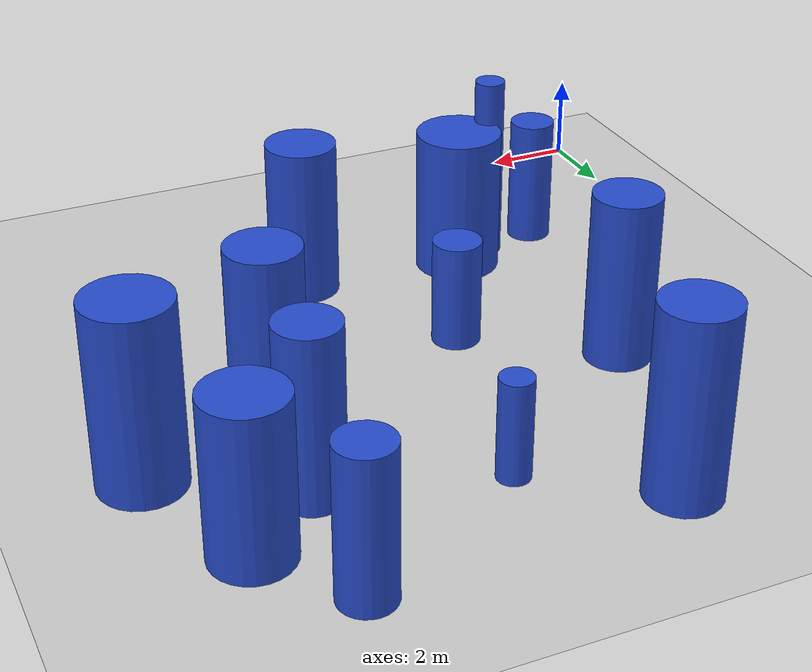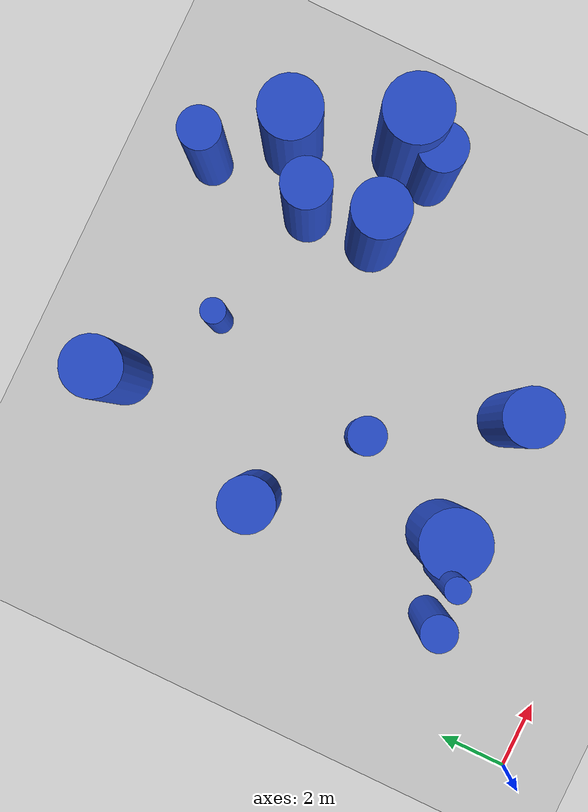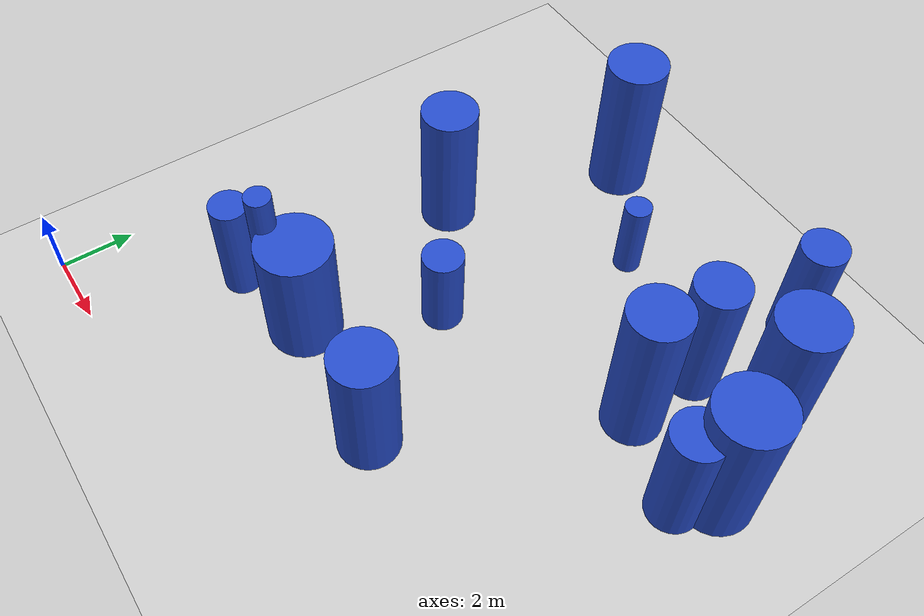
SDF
<sdf version="1.6">
 <world name="default">
  <model name="ground_plane">
   <static>1</static>
   <link name="link">
    <collision name="collision">
     <geometry><plane><normal>0 0 1</normal><size>100 100</size></plane></geometry>
     <surface><friction><ode><mu>100</mu><mu2>50</mu2></ode></friction></surface>
    </collision>
    <visual name="visual">
     <cast_shadows>0</cast_shadows>
     <geometry><plane><normal>0 0 1</normal><size>100 100</size></plane></geometry>
     <material>
      <script><uri>file://media/materials/scripts/gazebo.material</uri><name>Gazebo/Grey</name></script>
     </material>
    </visual>
   </link>
  </model>
  <model name="6">
   <static>0</static>
   <link name="link">
    <inertial>
     <mass>2</mass>
     <inertia><ixx>1.16849</ixx><ixy>0</ixy><ixz>0</ixz><iyy>1.16849</iyy><iyz>0</iyz><izz>0.30328</izz></inertia>
    </inertial>
    <collision name="collision">
     <geometry><cylinder><length>2.47004</length><radius>0.550708</radius></cylinder></geometry>
     <surface><contact><collide_without_contact>1</collide_without_contact></contact></surface>
    </collision>
    <visual name="visual">
     <geometry><cylinder><length>2.47004</length><radius>0.550708</radius></cylinder></geometry>
     <material>
      <script><uri>file://media/materials/scripts/gazebo.material</uri><name>Gazebo/Blue</name></script>
     </material>
    </visual>
    <gravity>0</gravity>
   </link>
   <pose>7.0052 7.97036 1.23502 0 -0 0</pose>
  </model>
  <model name="28">
   <static>0</static>
   <link name="link">
    <inertial>
     <mass>2</mass>
     <inertia><ixx>1.94852</ixx><ixy>0</ixy><ixz>0</ixz><iyy>1.94852</iyy><iyz>0</iyz><izz>0.176047</izz></inertia>
    </inertial>
    <collision name="collision">
     <geometry><cylinder><length>3.3411</length><radius>0.41958</radius></cylinder></geometry>
     <surface><contact><collide_without_contact>1</collide_without_contact></contact></surface>
    </collision>
    <visual name="visual">
     <geometry><cylinder><length>3.3411</length><radius>0.41958</radius></cylinder></geometry>
     <material>
      <script><uri>file://media/materials/scripts/gazebo.material</uri><name>Gazebo/Blue</name></script>
     </material>
    </visual>
    <gravity>0</gravity>
   </link>
   <pose>14.7068 10.6265 1.67055 0 -0 0</pose>
  </model>
  <model name="40">
   <static>0</static>
   <link name="link">
    <inertial>
     <mass>2</mass>
     <inertia><ixx>2.63983</ixx><ixy>0</ixy><ixz>0</ixz><iyy>2.63983</iyy><iyz>0</iyz><izz>0.666975</izz></inertia>
    </inertial>
    <collision name="collision">
     <geometry><cylinder><length>3.71996</length><radius>0.816686</radius></cylinder></geometry>
     <surface><contact><collide_without_contact>1</collide_without_contact></contact></surface>
    </collision>
    <visual name="visual">
     <geometry><cylinder><length>3.71996</length><radius>0.816686</radius></cylinder></geometry>
     <material>
      <script><uri>file://media/materials/scripts/gazebo.material</uri><name>Gazebo/Blue</name></script>
     </material>
    </visual>
    <gravity>0</gravity>
   </link>
   <pose>9.25913 4.38919 1.85998 0 -0 0</pose>
  </model>
  <model name="76">
   <static>0</static>
   <link name="link">
    <inertial>
     <mass>2</mass>
     <inertia><ixx>2.26784</ixx><ixy>0</ixy><ixz>0</ixz><iyy>2.26784</iyy><iyz>0</iyz><izz>0.465328</izz></inertia>
    </inertial>
    <collision name="collision">
     <geometry><cylinder><length>3.49443</length><radius>0.68215</radius></cylinder></geometry>
     <surface><contact><collide_without_contact>1</collide_without_contact></contact></surface>
    </collision>
    <visual name="visual">
     <geometry><cylinder><length>3.49443</length><radius>0.68215</radius></cylinder></geometry>
     <material>
      <script><uri>file://media/materials/scripts/gazebo.material</uri><name>Gazebo/Blue</name></script>
     </material>
    </visual>
    <gravity>0</gravity>
   </link>
   <pose>14.5999 9.48681 1.74722 0 -0 0</pose>
  </model>
  <model name="80">
   <static>0</static>
   <link name="link">
    <inertial>
     <mass>2</mass>
     <inertia><ixx>3.71121</ixx><ixy>0</ixy><ixz>0</ixz><iyy>3.71121</iyy><iyz>0</iyz><izz>0.629149</izz></inertia>
    </inertial>
    <collision name="collision">
     <geometry><cylinder><length>4.5144</length><radius>0.793189</radius></cylinder></geometry>
     <surface><contact><collide_without_contact>1</collide_without_contact></contact></surface>
    </collision>
    <visual name="visual">
     <geometry><cylinder><length>4.5144</length><radius>0.793189</radius></cylinder></geometry>
     <material>
      <script><uri>file://media/materials/scripts/gazebo.material</uri><name>Gazebo/Blue</name></script>
     </material>
    </visual>
    <gravity>0</gravity>
   </link>
   <pose>12.2104 10.1975 2.2572 0 -0 0</pose>
  </model>
  <model name="98">
   <static>0</static>
   <link name="link">
    <inertial>
     <mass>2</mass>
     <inertia><ixx>3.32763</ixx><ixy>0</ixy><ixz>0</ixz><iyy>3.32763</iyy><iyz>0</iyz><izz>0.121645</izz></inertia>
    </inertial>
    <collision name="collision">
     <geometry><cylinder><length>4.42729</length><radius>0.348777</radius></cylinder></geometry>
     <surface><contact><collide_without_contact>1</collide_without_contact></contact></surface>
    </collision>
    <visual name="visual">
     <geometry><cylinder><length>4.42729</length><radius>0.348777</radius></cylinder></geometry>
     <material>
      <script><uri>file://media/materials/scripts/gazebo.material</uri><name>Gazebo/Blue</name></script>
     </material>
    </visual>
    <gravity>0</gravity>
   </link>
   <pose>4.45743 4.36938 2.21364 0 -0 0</pose>
  </model>
  <model name="142">
   <static>0</static>
   <link name="link">
    <inertial>
     <mass>2</mass>
     <inertia><ixx>2.45958</ixx><ixy>0</ixy><ixz>0</ixz><iyy>2.45958</iyy><iyz>0</iyz><izz>0.99276</izz></inertia>
    </inertial>
    <collision name="collision">
     <geometry><cylinder><length>3.43208</length><radius>0.996374</radius></cylinder></geometry>
     <surface><contact><collide_without_contact>1</collide_without_contact></contact></surface>
    </collision>
    <visual name="visual">
     <geometry><cylinder><length>3.43208</length><radius>0.996374</radius></cylinder></geometry>
     <material>
      <script><uri>file://media/materials/scripts/gazebo.material</uri><name>Gazebo/Blue</name></script>
     </material>
    </visual>
    <gravity>0</gravity>
   </link>
   <pose>5.41598 4.70127 1.71604 0 -0 0</pose>
  </model>
  <model name="143">
   <static>0</static>
   <link name="link">
    <inertial>
     <mass>2</mass>
     <inertia><ixx>2.80765</ixx><ixy>0</ixy><ixz>0</ixz><iyy>2.80765</iyy><iyz>0</iyz><izz>0.487148</izz></inertia>
    </inertial>
    <collision name="collision">
     <geometry><cylinder><length>3.9223</length><radius>0.69796</radius></cylinder></geometry>
     <surface><contact><collide_without_contact>1</collide_without_contact></contact></surface>
    </collision>
    <visual name="visual">
     <geometry><cylinder><length>3.9223</length><radius>0.69796</radius></cylinder></geometry>
     <material>
      <script><uri>file://media/materials/scripts/gazebo.material</uri><name>Gazebo/Blue</name></script>
     </material>
    </visual>
    <gravity>0</gravity>
   </link>
   <pose>12.1102 12.2397 1.96115 0 -0 0</pose>
  </model>
  <model name="163">
   <static>0</static>
   <link name="link">
    <inertial>
     <mass>2</mass>
     <inertia><ixx>3.32373</ixx><ixy>0</ixy><ixz>0</ixz><iyy>3.32373</iyy><iyz>0</iyz><izz>0.890012</izz></inertia>
    </inertial>
    <collision name="collision">
     <geometry><cylinder><length>4.156</length><radius>0.943405</radius></cylinder></geometry>
     <surface><contact><collide_without_contact>1</collide_without_contact></contact></surface>
    </collision>
    <visual name="visual">
     <geometry><cylinder><length>4.156</length><radius>0.943405</radius></cylinder></geometry>
     <material>
      <script><uri>file://media/materials/scripts/gazebo.material</uri><name>Gazebo/Blue</name></script>
     </material>
    </visual>
    <gravity>0</gravity>
   </link>
   <pose>14.9851 10.467 2.078 0 -0 0</pose>
  </model>
  <model name="177">
   <static>0</static>
   <link name="link">
    <inertial>
     <mass>2</mass>
     <inertia><ixx>0.95271</ixx><ixy>0</ixy><ixz>0</ixz><iyy>0.95271</iyy><iyz>0</iyz><izz>0.135392</izz></inertia>
    </inertial>
    <collision name="collision">
     <geometry><cylinder><length>2.30436</length><radius>0.367956</radius></cylinder></geometry>
     <surface><contact><collide_without_contact>1</collide_without_contact></contact></surface>
    </collision>
    <visual name="visual">
     <geometry><cylinder><length>2.30436</length><radius>0.367956</radius></cylinder></geometry>
     <material>
      <script><uri>file://media/materials/scripts/gazebo.material</uri><name>Gazebo/Blue</name></script>
     </material>
    </visual>
    <gravity>0</gravity>
   </link>
   <pose>8.26384 13.2308 1.15218 0 -0 0</pose>
  </model>
  <model name="189">
   <static>0</static>
   <link name="link">
    <inertial>
     <mass>2</mass>
     <inertia><ixx>2.52915</ixx><ixy>0</ixy><ixz>0</ixz><iyy>2.52915</iyy><iyz>0</iyz><izz>0.784996</izz></inertia>
    </inertial>
    <collision name="collision">
     <geometry><cylinder><length>3.58049</length><radius>0.886</radius></cylinder></geometry>
     <surface><contact><collide_without_contact>1</collide_without_contact></contact></surface>
    </collision>
    <visual name="visual">
     <geometry><cylinder><length>3.58049</length><radius>0.886</radius></cylinder></geometry>
     <material>
      <script><uri>file://media/materials/scripts/gazebo.material</uri><name>Gazebo/Blue</name></script>
     </material>
    </visual>
    <gravity>0</gravity>
   </link>
   <pose>13.7865 13.5097 1.79025 0 -0 0</pose>
  </model>
  <model name="192">
   <static>0</static>
   <link name="link">
    <inertial>
     <mass>2</mass>
     <inertia><ixx>1.66723</ixx><ixy>0</ixy><ixz>0</ixz><iyy>1.66723</iyy><iyz>0</iyz><izz>0.270355</izz></inertia>
    </inertial>
    <collision name="collision">
     <geometry><cylinder><length>3.03188</length><radius>0.519957</radius></cylinder></geometry>
     <surface><contact><collide_without_contact>1</collide_without_contact></contact></surface>
    </collision>
    <visual name="visual">
     <geometry><cylinder><length>3.03188</length><radius>0.519957</radius></cylinder></geometry>
     <material>
      <script><uri>file://media/materials/scripts/gazebo.material</uri><name>Gazebo/Blue</name></script>
     </material>
    </visual>
    <gravity>0</gravity>
   </link>
   <pose>3.09771 4.0201 1.51594 0 -0 0</pose>
  </model>
  <model name="232">
   <static>0</static>
   <link name="link">
    <inertial>
     <mass>2</mass>
     <inertia><ixx>3.41433</ixx><ixy>0</ixy><ixz>0</ixz><iyy>3.41433</iyy><iyz>0</iyz><izz>0.690269</izz></inertia>
    </inertial>
    <collision name="collision">
     <geometry><cylinder><length>4.29129</length><radius>0.830824</radius></cylinder></geometry>
     <surface><contact><collide_without_contact>1</collide_without_contact></contact></surface>
    </collision>
    <visual name="visual">
     <geometry><cylinder><length>4.29129</length><radius>0.830824</radius></cylinder></geometry>
     <material>
      <script><uri>file://media/materials/scripts/gazebo.material</uri><name>Gazebo/Blue</name></script>
     </material>
    </visual>
    <gravity>0</gravity>
   </link>
   <pose>5.53066 15.0773 2.14565 0 -0 0</pose>
  </model>
  <model name="239">
   <static>0</static>
   <link name="link">
    <inertial>
     <mass>2</mass>
     <inertia><ixx>2.08851</ixx><ixy>0</ixy><ixz>0</ixz><iyy>2.08851</iyy><iyz>0</iyz><izz>0.364489</izz></inertia>
    </inertial>
    <collision name="collision">
     <geometry><cylinder><length>3.38195</length><radius>0.603729</radius></cylinder></geometry>
     <surface><contact><collide_without_contact>1</collide_without_contact></contact></surface>
    </collision>
    <visual name="visual">
     <geometry><cylinder><length>3.38195</length><radius>0.603729</radius></cylinder></geometry>
     <material>
      <script><uri>file://media/materials/scripts/gazebo.material</uri><name>Gazebo/Blue</name></script>
     </material>
    </visual>
    <gravity>0</gravity>
   </link>
   <pose>12.3231 15.4519 1.69098 0 -0 0</pose>
  </model>
  <model name="244">
   <static>0</static>
   <link name="link">
    <inertial>
     <mass>2</mass>
     <inertia><ixx>2.89546</ixx><ixy>0</ixy><ixz>0</ixz><iyy>2.89546</iyy><iyz>0</iyz><izz>0.586213</izz></inertia>
    </inertial>
    <collision name="collision">
     <geometry><cylinder><length>3.95147</length><radius>0.765645</radius></cylinder></geometry>
     <surface><contact><collide_without_contact>1</collide_without_contact></contact></surface>
    </collision>
    <visual name="visual">
     <geometry><cylinder><length>3.95147</length><radius>0.765645</radius></cylinder></geometry>
     <material>
      <script><uri>file://media/materials/scripts/gazebo.material</uri><name>Gazebo/Blue</name></script>
     </material>
    </visual>
    <gravity>0</gravity>
   </link>
   <pose>4.05756 10.069 1.97574 0 -0 0</pose>
  </model>
 </world>
</sdf>
